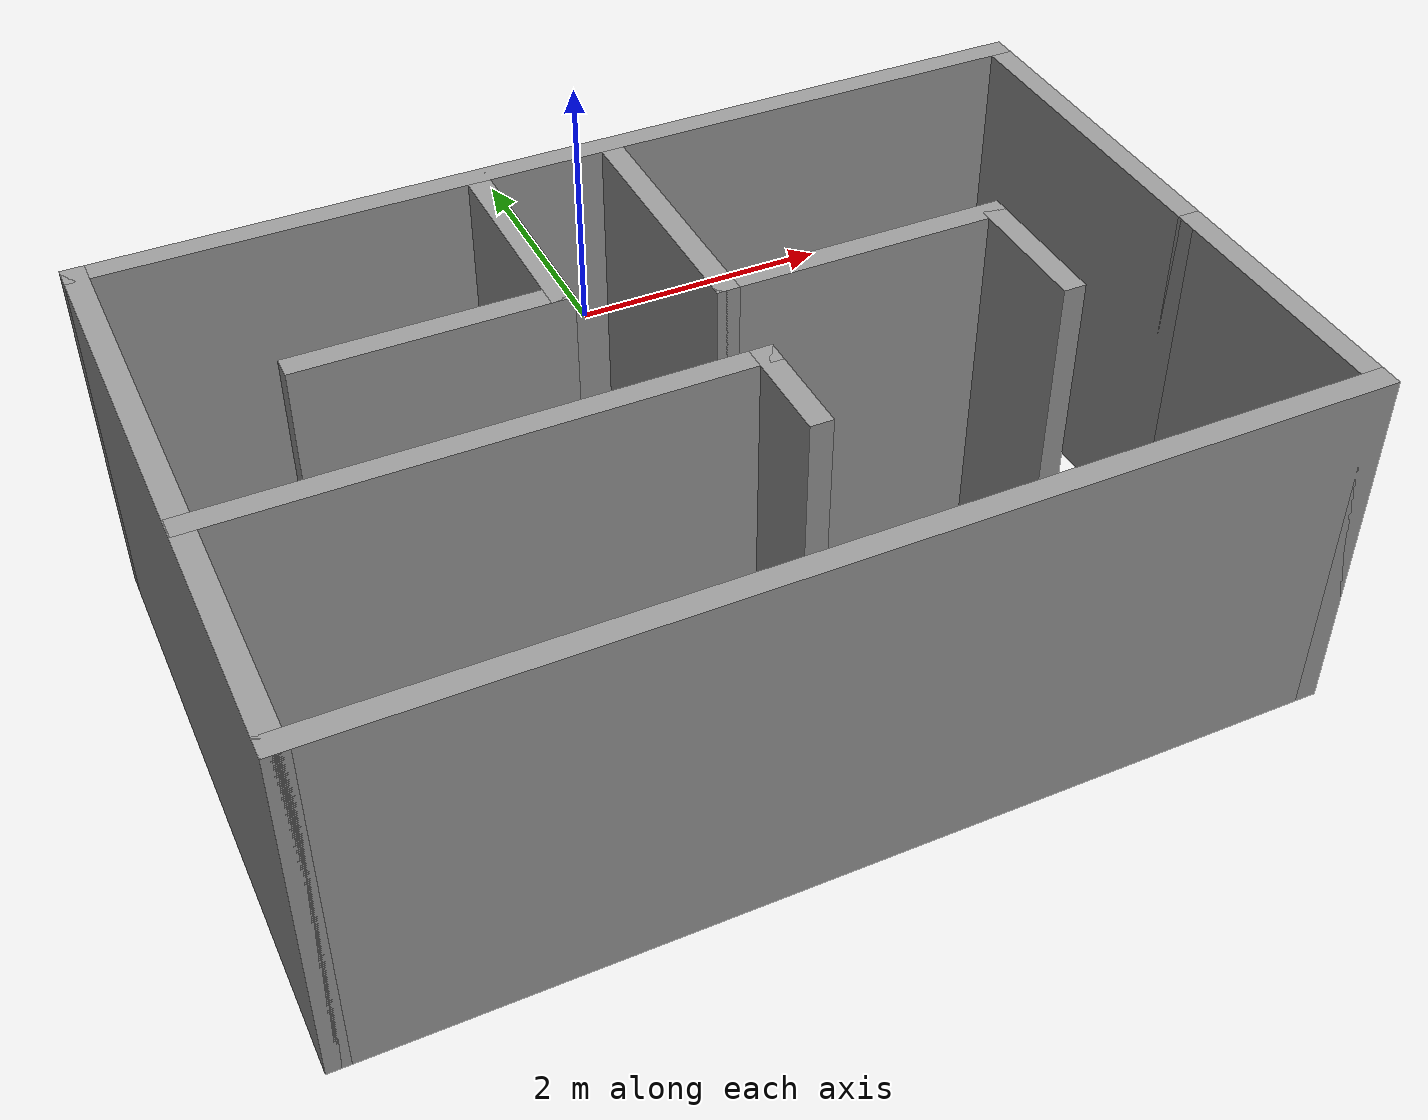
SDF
<?xml version='1.0'?>
<sdf version='1.7'>
  <model name='room1'>
    <pose>-0.635 -2.8525 0 0 -0 0</pose>
    <link name='Wall_0'>
      <collision name='Wall_0_Collision'>
        <geometry>
          <box>
            <size>6.5 0.15 2.5</size>
          </box>
        </geometry>
        <pose>0 0 1.25 0 -0 0</pose>
      </collision>
      <visual name='Wall_0_Visual'>
        <pose>0 0 1.25 0 -0 0</pose>
        <geometry>
          <box>
            <size>6.5 0.15 2.5</size>
          </box>
        </geometry>
        <material>
          <script>
            <uri>file://media/materials/scripts/gazebo.material</uri>
            <name>Gazebo/Grey</name>
          </script>
          <ambient>1 1 1 1</ambient>
        </material>
        <meta>
          <layer>0</layer>
        </meta>
      </visual>
      <pose>0 1.3225 0 0 -0 0</pose>
    </link>
    <link name='Wall_1'>
      <collision name='Wall_1_Collision'>
        <geometry>
          <box>
            <size>2.5 0.15 2.5</size>
          </box>
        </geometry>
        <pose>0 0 1.25 0 -0 0</pose>
      </collision>
      <visual name='Wall_1_Visual'>
        <pose>0 0 1.25 0 -0 0</pose>
        <geometry>
          <box>
            <size>2.5 0.15 2.5</size>
          </box>
        </geometry>
        <material>
          <script>
            <uri>file://media/materials/scripts/gazebo.material</uri>
            <name>Gazebo/Grey</name>
          </script>
          <ambient>1 1 1 1</ambient>
        </material>
        <meta>
          <layer>0</layer>
        </meta>
      </visual>
      <pose>3.175 0.1475 0 0 -0 -1.5708</pose>
    </link>
    <link name='Wall_10'>
      <collision name='Wall_10_Collision'>
        <geometry>
          <box>
            <size>1.5 0.15 2.5</size>
          </box>
        </geometry>
        <pose>0 0 1.25 0 -0 0</pose>
      </collision>
      <visual name='Wall_10_Visual'>
        <pose>0 0 1.25 0 -0 0</pose>
        <geometry>
          <box>
            <size>1.5 0.15 2.5</size>
          </box>
        </geometry>
        <material>
          <script>
            <uri>file://media/materials/scripts/gazebo.material</uri>
            <name>Gazebo/Grey</name>
          </script>
          <ambient>1 1 1 1</ambient>
        </material>
        <meta>
          <layer>0</layer>
        </meta>
      </visual>
      <pose>-0.650115 0.601741 0 0 -0 -1.5708</pose>
    </link>
    <link name='Wall_11'>
      <collision name='Wall_11_Collision'>
        <geometry>
          <box>
            <size>1.75 0.15 2.5</size>
          </box>
        </geometry>
        <pose>0 0 1.25 0 -0 0</pose>
      </collision>
      <visual name='Wall_11_Visual'>
        <pose>0 0 1.25 0 -0 0</pose>
        <geometry>
          <box>
            <size>1.75 0.15 2.5</size>
          </box>
        </geometry>
        <material>
          <script>
            <uri>file://media/materials/scripts/gazebo.material</uri>
            <name>Gazebo/Grey</name>
          </script>
          <ambient>1 1 1 1</ambient>
        </material>
        <meta>
          <layer>0</layer>
        </meta>
      </visual>
      <pose>-1.45012 -0.073259 0 0 -0 3.14159</pose>
    </link>
    <link name='Wall_13'>
      <collision name='Wall_13_Collision'>
        <geometry>
          <box>
            <size>3.5 0.15 2.5</size>
          </box>
        </geometry>
        <pose>0 0 1.25 0 -0 0</pose>
      </collision>
      <visual name='Wall_13_Visual'>
        <pose>0 0 1.25 0 -0 0</pose>
        <geometry>
          <box>
            <size>3.5 0.15 2.5</size>
          </box>
        </geometry>
        <material>
          <script>
            <uri>file://media/materials/scripts/gazebo.material</uri>
            <name>Gazebo/Grey</name>
          </script>
          <ambient>1 1 1 1</ambient>
        </material>
        <meta>
          <layer>0</layer>
        </meta>
      </visual>
      <pose>-1.49268 -1.12664 0 0 -0 0</pose>
    </link>
    <link name='Wall_14'>
      <collision name='Wall_14_Collision'>
        <geometry>
          <box>
            <size>0.75 0.15 2.5</size>
          </box>
        </geometry>
        <pose>0 0 1.25 0 -0 0</pose>
      </collision>
      <visual name='Wall_14_Visual'>
        <pose>0 0 1.25 0 -0 0</pose>
        <geometry>
          <box>
            <size>0.75 0.15 2.5</size>
          </box>
        </geometry>
        <material>
          <script>
            <uri>file://media/materials/scripts/gazebo.material</uri>
            <name>Gazebo/Grey</name>
          </script>
          <ambient>1 1 1 1</ambient>
        </material>
        <meta>
          <layer>0</layer>
        </meta>
      </visual>
      <pose>0.182322 -1.42665 0 0 -0 -1.5708</pose>
    </link>
    <link name='Wall_17'>
      <collision name='Wall_17_Collision'>
        <geometry>
          <box>
            <size>1.75 0.15 2.5</size>
          </box>
        </geometry>
        <pose>0 0 1.25 0 -0 0</pose>
      </collision>
      <visual name='Wall_17_Visual'>
        <pose>0 0 1.25 0 -0 0</pose>
        <geometry>
          <box>
            <size>1.75 0.15 2.5</size>
          </box>
        </geometry>
        <material>
          <script>
            <uri>file://media/materials/scripts/gazebo.material</uri>
            <name>Gazebo/Grey</name>
          </script>
          <ambient>1 1 1 1</ambient>
        </material>
        <meta>
          <layer>0</layer>
        </meta>
      </visual>
      <pose>0.262322 0.403355 0 0 -0 -1.5708</pose>
    </link>
    <link name='Wall_18'>
      <collision name='Wall_18_Collision'>
        <geometry>
          <box>
            <size>2 0.15 2.5</size>
          </box>
        </geometry>
        <pose>0 0 1.25 0 -0 0</pose>
      </collision>
      <visual name='Wall_18_Visual'>
        <pose>0 0 1.25 0 -0 0</pose>
        <geometry>
          <box>
            <size>2 0.15 2.5</size>
          </box>
        </geometry>
        <material>
          <script>
            <uri>file://media/materials/scripts/gazebo.material</uri>
            <name>Gazebo/Grey</name>
          </script>
          <ambient>1 1 1 1</ambient>
        </material>
        <meta>
          <layer>0</layer>
        </meta>
      </visual>
      <pose>1.18732 -0.396645 0 0 -0 0</pose>
    </link>
    <link name='Wall_19'>
      <collision name='Wall_19_Collision'>
        <geometry>
          <box>
            <size>1 0.15 2.5</size>
          </box>
        </geometry>
        <pose>0 0 1.25 0 -0 0</pose>
      </collision>
      <visual name='Wall_19_Visual'>
        <pose>0 0 1.25 0 -0 0</pose>
        <geometry>
          <box>
            <size>1 0.15 2.5</size>
          </box>
        </geometry>
        <material>
          <script>
            <uri>file://media/materials/scripts/gazebo.material</uri>
            <name>Gazebo/Grey</name>
          </script>
          <ambient>1 1 1 1</ambient>
        </material>
        <meta>
          <layer>0</layer>
        </meta>
      </visual>
      <pose>2.11232 -0.821645 0 0 -0 -1.5708</pose>
    </link>
    <link name='Wall_21'>
      <collision name='Wall_21_Collision'>
        <geometry>
          <box>
            <size>4.25 0.15 2.5</size>
          </box>
        </geometry>
        <pose>0 0 1.25 0 -0 0</pose>
      </collision>
      <visual name='Wall_21_Visual'>
        <pose>0 0 1.25 0 -0 0</pose>
        <geometry>
          <box>
            <size>4.25 0.15 2.5</size>
          </box>
        </geometry>
        <material>
          <script>
            <uri>file://media/materials/scripts/gazebo.material</uri>
            <name>Gazebo/Grey</name>
          </script>
          <ambient>1 1 1 1</ambient>
        </material>
        <meta>
          <layer>0</layer>
        </meta>
      </visual>
      <pose>-3.175 -0.7275 0 0 -0 -1.5708</pose>
    </link>
    <link name='Wall_23'>
      <collision name='Wall_23_Collision'>
        <geometry>
          <box>
            <size>6.5 0.15 2.5</size>
          </box>
        </geometry>
        <pose>0 0 1.25 0 -0 0</pose>
      </collision>
      <visual name='Wall_23_Visual'>
        <pose>0 0 1.25 0 -0 0</pose>
        <geometry>
          <box>
            <size>6.5 0.15 2.5</size>
          </box>
        </geometry>
        <material>
          <script>
            <uri>file://media/materials/scripts/gazebo.material</uri>
            <name>Gazebo/Grey</name>
          </script>
          <ambient>1 1 1 1</ambient>
        </material>
        <meta>
          <layer>0</layer>
        </meta>
      </visual>
      <pose>0 -2.7775 0 0 -0 0</pose>
    </link>
    <link name='Wall_24'>
      <collision name='Wall_24_Collision'>
        <geometry>
          <box>
            <size>1.9 0.15 2.5</size>
          </box>
        </geometry>
        <pose>0 0 1.25 0 -0 0</pose>
      </collision>
      <visual name='Wall_24_Visual'>
        <pose>0 0 1.25 0 -0 0</pose>
        <geometry>
          <box>
            <size>1.9 0.15 2.5</size>
          </box>
        </geometry>
        <material>
          <script>
            <uri>file://media/materials/scripts/gazebo.material</uri>
            <name>Gazebo/Grey</name>
          </script>
          <ambient>1 1 1 1</ambient>
        </material>
        <meta>
          <layer>0</layer>
        </meta>
      </visual>
      <pose>3.175 -1.9025 0 0 -0 1.5708</pose>
    </link>
    <static>1</static>
  </model>
</sdf>
